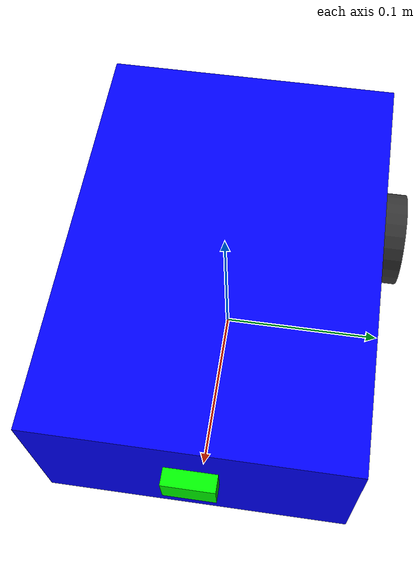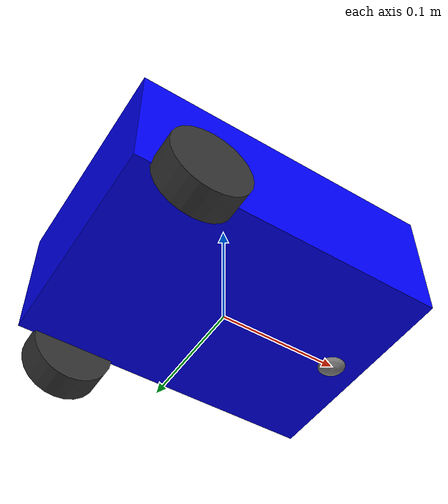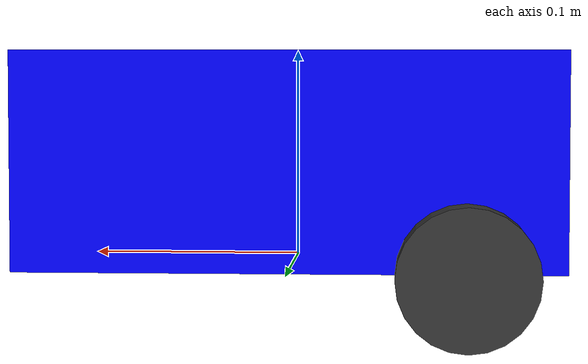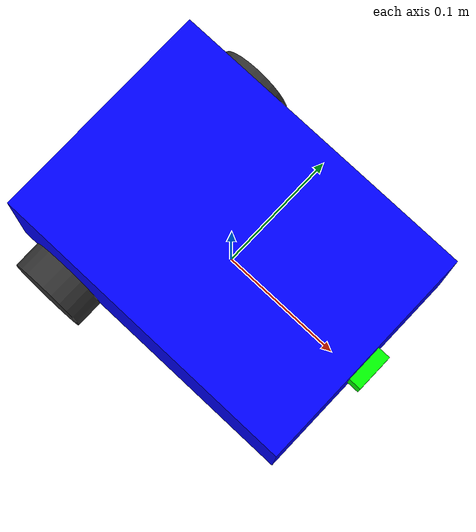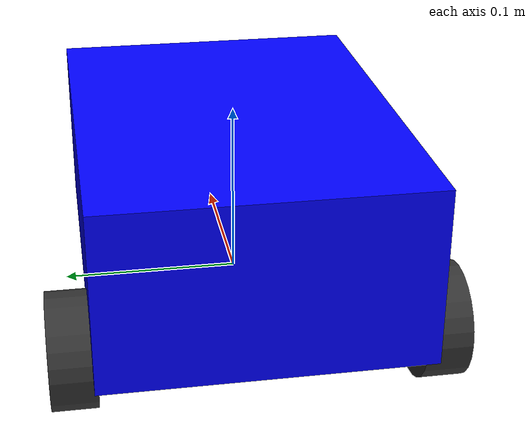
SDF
<?xml version="1.0"?>
<sdf version="1.7">
  <model name="autocar_car">
    <static>false</static>

    <!-- Chassis -->
    <link name="chassis">
      <pose>0 0 0.05 0 0 0</pose>
      <inertial>
        <mass>2.0</mass>
        <inertia>
          <ixx>0.00707</ixx>
          <ixy>0</ixy>
          <ixz>0</ixz>
          <iyy>0.01208</iyy>
          <iyz>0</iyz>
          <izz>0.01582</izz>
        </inertia>
      </inertial>
      <collision name="chassis_collision">
        <geometry>
          <box>
            <size>0.25 0.18 0.10</size>
          </box>
        </geometry>
      </collision>
      <visual name="chassis_visual">
        <geometry>
          <box>
            <size>0.25 0.18 0.10</size>
          </box>
        </geometry>
        <material>
          <ambient>0 0 1 1</ambient>
          <diffuse>0 0 1 1</diffuse>
          <specular>0.1 0.1 0.1 1</specular>
        </material>
      </visual>
    </link>

    <!-- Left Wheel -->
    <link name="left_wheel">
      <pose>-0.08 0.10 0 1.5708 0 0</pose>
      <inertial>
        <mass>0.1</mass>
        <inertia>
          <ixx>0.00003081</ixx>
          <ixy>0</ixy>
          <ixz>0</ixz>
          <iyy>0.00003081</iyy>
          <iyz>0</iyz>
          <izz>0.0000512</izz>
        </inertia>
      </inertial>
      <collision name="left_wheel_collision">
        <geometry>
          <cylinder>
            <radius>0.032</radius>
            <length>0.025</length>
          </cylinder>
        </geometry>
      </collision>
      <visual name="left_wheel_visual">
        <geometry>
          <cylinder>
            <radius>0.032</radius>
            <length>0.025</length>
          </cylinder>
        </geometry>
        <material>
          <ambient>0.2 0.2 0.2 1</ambient>
          <diffuse>0.2 0.2 0.2 1</diffuse>
          <specular>0.1 0.1 0.1 1</specular>
        </material>
      </visual>
    </link>

    <!-- Right Wheel -->
    <link name="right_wheel">
      <pose>-0.08 -0.10 0 1.5708 0 0</pose>
      <inertial>
        <mass>0.1</mass>
        <inertia>
          <ixx>0.00003081</ixx>
          <ixy>0</ixy>
          <ixz>0</ixz>
          <iyy>0.00003081</iyy>
          <iyz>0</iyz>
          <izz>0.0000512</izz>
        </inertia>
      </inertial>
      <collision name="right_wheel_collision">
        <geometry>
          <cylinder>
            <radius>0.032</radius>
            <length>0.025</length>
          </cylinder>
        </geometry>
      </collision>
      <visual name="right_wheel_visual">
        <geometry>
          <cylinder>
            <radius>0.032</radius>
            <length>0.025</length>
          </cylinder>
        </geometry>
        <material>
          <ambient>0.2 0.2 0.2 1</ambient>
          <diffuse>0.2 0.2 0.2 1</diffuse>
          <specular>0.1 0.1 0.1 1</specular>
        </material>
      </visual>
    </link>

    <!-- Caster Wheel -->
    <link name="caster_wheel">
      <pose>0.10 0 0.01 0 0 0</pose>
      <inertial>
        <mass>0.01</mass>
        <inertia>
          <ixx>0.0000009</ixx>
          <ixy>0</ixy>
          <ixz>0</ixz>
          <iyy>0.0000009</iyy>
          <iyz>0</iyz>
          <izz>0.0000009</izz>
        </inertia>
      </inertial>
      <collision name="caster_wheel_collision">
        <geometry>
          <sphere>
            <radius>0.015</radius>
          </sphere>
        </geometry>
      </collision>
      <visual name="caster_wheel_visual">
        <geometry>
          <sphere>
            <radius>0.015</radius>
          </sphere>
        </geometry>
        <material>
          <ambient>0.5 0.5 0.5 1</ambient>
          <diffuse>0.5 0.5 0.5 1</diffuse>
          <specular>0.1 0.1 0.1 1</specular>
        </material>
      </visual>
    </link>

    <!-- LiDAR -->
    <link name="lidar_link">
      <pose>0.12 0 0.06 0 0 0</pose>
      <inertial>
        <mass>0.05</mass>
        <inertia>
          <ixx>0.00001</ixx>
          <ixy>0</ixy>
          <ixz>0</ixz>
          <iyy>0.00001</iyy>
          <iyz>0</iyz>
          <izz>0.00001</izz>
        </inertia>
      </inertial>
      <visual name="lidar_visual">
        <geometry>
          <box>
            <size>0.03 0.03 0.02</size>
          </box>
        </geometry>
        <material>
          <ambient>0 1 0 1</ambient>
          <diffuse>0 1 0 1</diffuse>
          <specular>0.1 0.1 0.1 1</specular>
        </material>
      </visual>
      <sensor name="lidar_sensor" type="gpu_lidar">
        <lidar>
          <scan>
            <horizontal>
              <samples>360</samples>
              <resolution>1</resolution>
              <min_angle>0</min_angle>
              <max_angle>6.283</max_angle>
            </horizontal>
          </scan>
          <range>
            <min>0.05</min>
            <max>12.0</max>
          </range>
          <noise type="gaussian">
            <mean>0.0</mean>
            <stddev>0.02</stddev>
          </noise>
        </lidar>
        <update_rate>10</update_rate>
        <topic>/model/autocar_car/scan</topic>
      </sensor>
    </link>

    <!-- IMU -->
    <link name="imu_link">
      <pose>0 0 0.03 0 0 0</pose>
      <inertial>
        <mass>0.01</mass>
        <inertia>
          <ixx>0.000001</ixx>
          <ixy>0</ixy>
          <ixz>0</ixz>
          <iyy>0.000001</iyy>
          <iyz>0</iyz>
          <izz>0.000001</izz>
        </inertia>
      </inertial>
      <visual name="imu_visual">
        <geometry>
          <box>
            <size>0.01 0.01 0.01</size>
          </box>
        </geometry>
        <material>
          <ambient>0.5 0.5 0.5 1</ambient>
          <diffuse>0.5 0.5 0.5 1</diffuse>
        </material>
      </visual>
      <sensor name="imu_sensor" type="imu">
        <imu>
          <angular_velocity>
            <noise type="gaussian">
              <mean>0.0</mean>
              <stddev>0.01</stddev>
            </noise>
          </angular_velocity>
          <linear_acceleration>
            <noise type="gaussian">
              <mean>0.0</mean>
              <stddev>0.01</stddev>
            </noise>
          </linear_acceleration>
        </imu>
        <update_rate>100</update_rate>
        <topic>/model/autocar_car/imu</topic>
      </sensor>
    </link>

    <!-- GPS -->
    <link name="gps_link">
      <pose>0 0 0.04 0 0 0</pose>
      <inertial>
        <mass>0.01</mass>
        <inertia>
          <ixx>0.000001</ixx>
          <ixy>0</ixy>
          <ixz>0</ixz>
          <iyy>0.000001</iyy>
          <iyz>0</iyz>
          <izz>0.000001</izz>
        </inertia>
      </inertial>
      <visual name="gps_visual">
        <geometry>
          <box>
            <size>0.01 0.01 0.01</size>
          </box>
        </geometry>
        <material>
          <ambient>0.5 0.5 0.5 1</ambient>
          <diffuse>0.5 0.5 0.5 1</diffuse>
        </material>
      </visual>
      <sensor name="gps_sensor" type="navsat">
        <navigation_satellite>
          <noise type="gaussian">
            <mean>0.0</mean>
            <stddev>0.01</stddev>
          </noise>
        </navigation_satellite>
        <update_rate>10</update_rate>
        <topic>/model/autocar_car/gps</topic>
      </sensor>
    </link>

    <!-- Depth Camera -->
    <link name="depth_camera_link">
      <pose>0.12 0 0.04 0 0 0</pose>
      <inertial>
        <mass>0.05</mass>
        <inertia>
          <ixx>0.00001</ixx>
          <ixy>0</ixy>
          <ixz>0</ixz>
          <iyy>0.00001</iyy>
          <iyz>0</iyz>
          <izz>0.00001</izz>
        </inertia>
      </inertial>
      <visual name="depth_camera_visual">
        <geometry>
          <box>
            <size>0.02 0.02 0.02</size>
          </box>
        </geometry>
        <material>
          <ambient>1 1 0 1</ambient>
          <diffuse>1 1 0 1</diffuse>
          <specular>0.1 0.1 0.1 1</specular>
        </material>
      </visual>
      <sensor name="depth_camera_sensor" type="depth_camera">
        <camera>
          <horizontal_fov>1.047</horizontal_fov>
          <image>
            <width>640</width>
            <height>480</height>
          </image>
          <clip>
            <near>0.1</near>
            <far>10.0</far>
          </clip>
        </camera>
        <update_rate>15</update_rate>
        <topic>/model/autocar_car/depth_image</topic>
      </sensor>
    </link>

    <!-- Joints -->
    <joint name="left_wheel_joint" type="revolute">
      <parent>chassis</parent>
      <child>left_wheel</child>
      <axis>
        <xyz>0 1 0</xyz>
      </axis>
    </joint>

    <joint name="right_wheel_joint" type="revolute">
      <parent>chassis</parent>
      <child>right_wheel</child>
      <axis>
        <xyz>0 1 0</xyz>
      </axis>
    </joint>

    <joint name="caster_wheel_joint" type="ball">
      <parent>chassis</parent>
      <child>caster_wheel</child>
    </joint>

    <joint name="lidar_joint" type="fixed">
      <parent>chassis</parent>
      <child>lidar_link</child>
    </joint>

    <joint name="imu_joint" type="fixed">
      <parent>chassis</parent>
      <child>imu_link</child>
    </joint>

    <joint name="gps_joint" type="fixed">
      <parent>chassis</parent>
      <child>gps_link</child>
    </joint>

    <joint name="depth_camera_joint" type="fixed">
      <parent>chassis</parent>
      <child>depth_camera_link</child>
    </joint>

    <!-- Plugins -->
    <plugin filename="libignition-gazebo-diff-drive-system.so" name="gz::sim::systems::DiffDrive">
      <left_joint>left_wheel_joint</left_joint>
      <right_joint>right_wheel_joint</right_joint>
      <wheel_separation>0.20</wheel_separation>
      <wheel_radius>0.032</wheel_radius>
      <odom_publisher_frequency>50</odom_publisher_frequency>
      <topic>/model/autocar_car/cmd_vel</topic>
      <odom_topic>/model/autocar_car/odom</odom_topic>
      <tf_topic>/model/autocar_car/tf</tf_topic>
    </plugin>

  </model>
</sdf>
